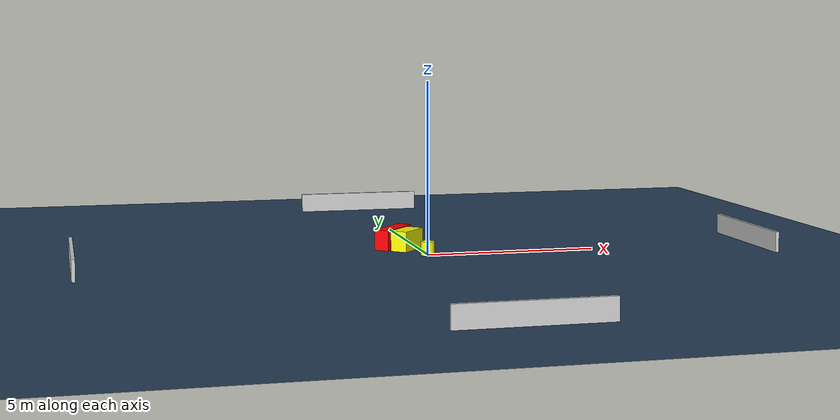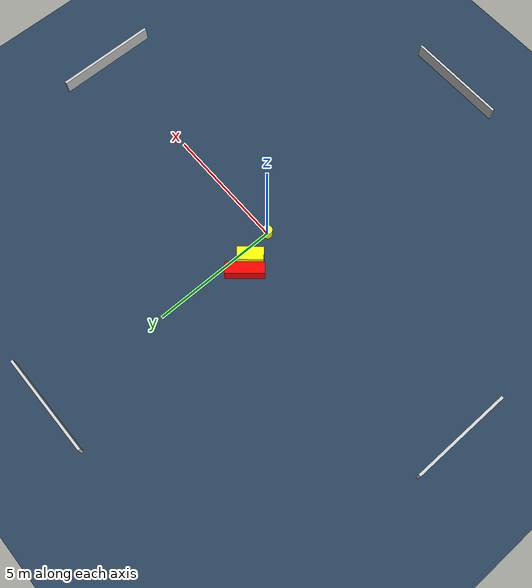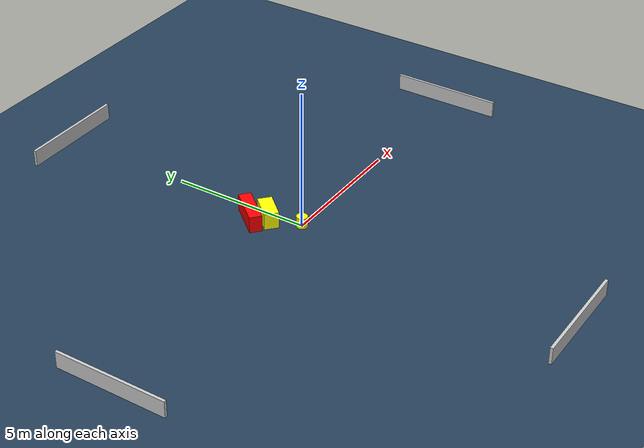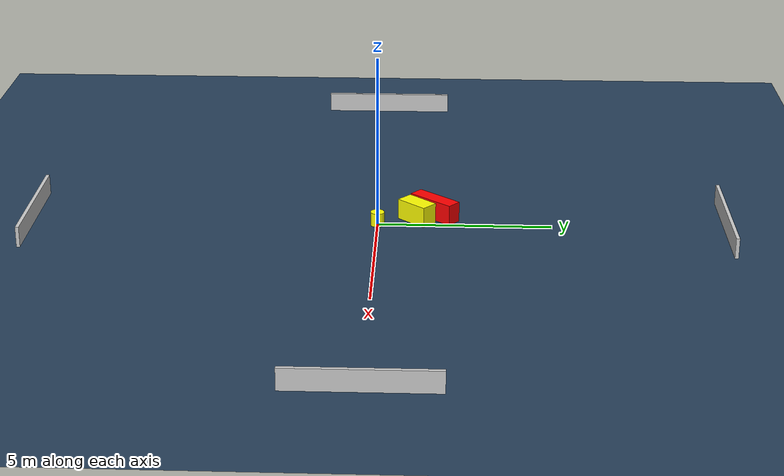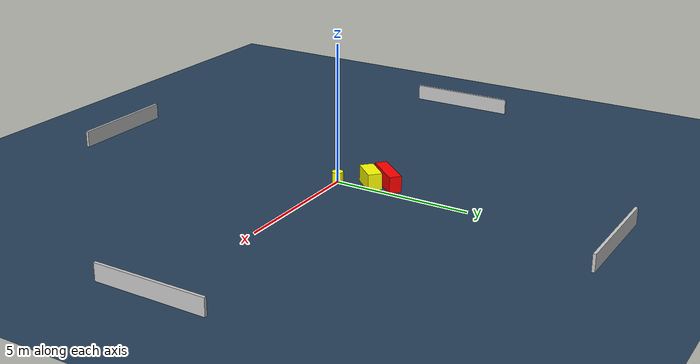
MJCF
<?xml version="1.0" ?>
<mujoco model="generated_environment">
  <option timestep="0.01" integrator="RK4" cone="elliptic"/>
  <default>
    <geom density="1"/>
  </default>
  <asset>
    <texture builtin="gradient" height="3072" name="skybox" rgb1="0.3 0.5 0.7" rgb2="0 0 0" type="skybox" width="512"/>
    <texture builtin="checker" height="300" name="groundplane" rgb1="0.2 0.3 0.4" rgb2="0.1 0.2 0.3" type="2d" width="300"/>
    <material name="groundplane" reflectance="0.2" texrepeat="5 5" texture="groundplane"/>
  </asset>
  <worldbody>
    <light dir="0 0 -1" directional="true" pos="0 0 1.5"/>
    <geom condim="3" friction="0.5 0.005 0.001" material="groundplane" name="floor" pos="0 0 0" size="0 0 0.05" type="plane"/>
    <body name="walls">
      <geom name="wall_1" condim="4" pos="-10.0 0.0 0.3" rgba="0.800000011920929 0.800000011920929 0.800000011920929 1.0" size="0.05 2.0 0.3" type="box"/>
      <geom name="wall_2" condim="4" pos="10.0 0.0 0.3" rgba="0.800000011920929 0.800000011920929 0.800000011920929 1.0" size="0.05 2.0 0.3" type="box"/>
      <geom name="wall_3" condim="4" pos="0.0 -10.0 0.3" rgba="0.800000011920929 0.800000011920929 0.800000011920929 1.0" size="2.0 0.05 0.3" type="box"/>
      <geom name="wall_4" condim="4" pos="0.0 10.0 0.3" rgba="0.800000011920929 0.800000011920929 0.800000011920929 1.0" size="2.0 0.05 0.3" type="box"/>
    </body>
    <body name="robot">
      <joint name="joint_x" type="slide" pos="0 0 0" axis="1 0 0"/>
      <joint name="joint_y" type="slide" pos="0 0 0" axis="0 1 0"/>
      <geom name="robot" type="cylinder" pos="0.0 0.0 0.2" size="0.2 0.2 0.0" mass="5.0" friction="1.0 0.005 0.0001" condim="4" rgba="1.0 1.0 0.0 1.0"/>
    </body>
    <body name="obstacle_1_movable">
      <geom name="obstacle_1_movable" condim="4" pos="-0.3539942712739748 1.1284802042222197 0.3" euler="0 0 227.9094925050342" friction="0.0 0.005 0.001" rgba="1.0 1.0 0.0 1.0" size="0.50043621573325 0.25588424584852487 0.3" type="box" mass="0.1"/>
      <joint type="free"/>
    </body>
    <body name="obstacle_2_static">
      <geom name="obstacle_2_static" condim="4" pos="-0.6547602072363369 1.6481875394720853 0.3" euler="0 0 49.59378285580082" friction="0.0 0.005 0.001" rgba="1.0 0.0 0.0 1.0" size="0.7355818894989068 0.22092568621464817 0.3" type="box"/>
    </body>
  </worldbody>
  <actuator>
    <motor name="actuator_x" joint="joint_x" gear="1" ctrlrange="-1 1"/>
    <motor name="actuator_y" joint="joint_y" gear="1" ctrlrange="-1 1"/>
  </actuator>
</mujoco>
